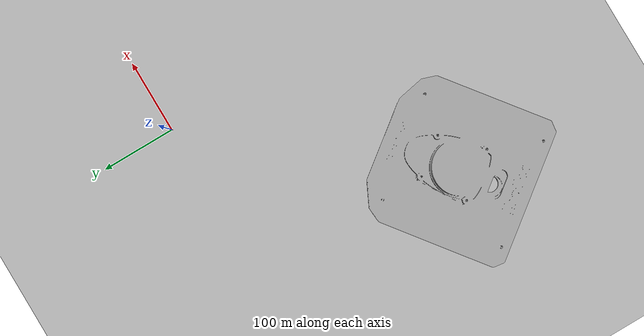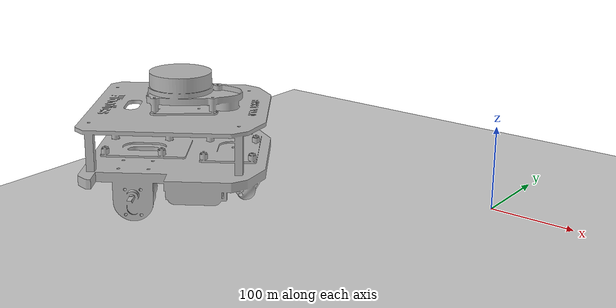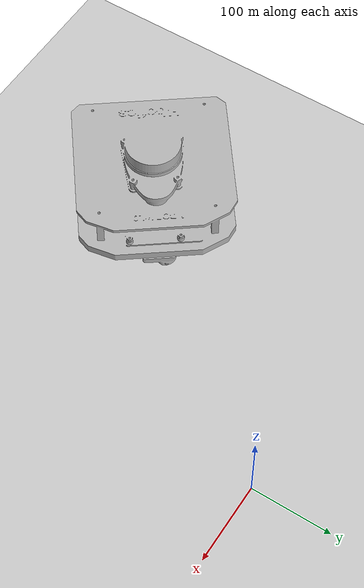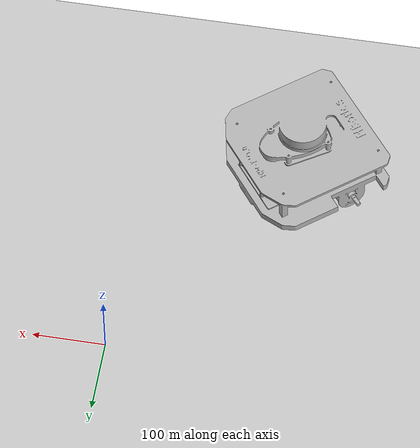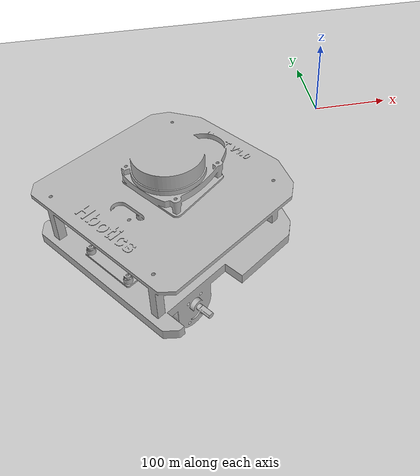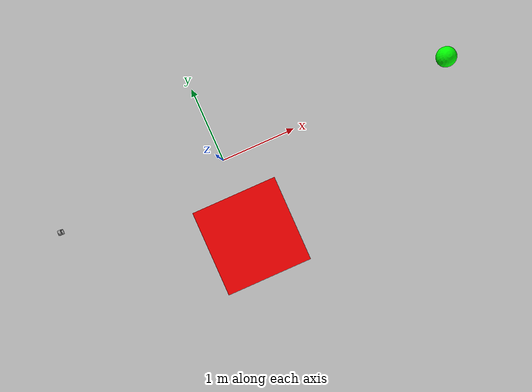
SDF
<sdf version="1.6">
 <world name="robot_world">
  <physics name="1ms" type="ignored">
   <max_step_size>0.001</max_step_size>
   <real_time_factor>1.0</real_time_factor>
  </physics>
  <plugin filename="ignition-gazebo-physics-system" name="gz::sim::systems::Physics"/>
  <plugin filename="ignition-gazebo-sensors-system" name="gz::sim::systems::Sensors">
   <render_engine>ogre</render_engine>
  </plugin>
  <plugin filename="ignition-gazebo-user-commands-system" name="gz::sim::systems::UserCommands"/>
  <plugin filename="ignition-gazebo-scene-broadcaster-system" name="gz::sim::systems::SceneBroadcaster"/>
  <scene><ambient>1.0 1.0 1.0</ambient><background>0.8 0.8 0.8</background><grid>true</grid></scene>
  <light type="directional" name="sun">
   <pose>0 0 10 0 0 0</pose>
   <diffuse>0.8 0.8 0.8 1</diffuse>
   <specular>0.8 0.8 0.8 1</specular>
   <attenuation>
    <range>1000</range>
    <constant>0.9</constant>
    <linear>0.01</linear>
    <quadratic>0.001</quadratic>
   </attenuation>
   <direction>-0.5 0.1 -0.9</direction>
  </light>
  <model name="ground_plane">
   <static>true</static>
   <link name="link">
    <collision name="collision">
     <geometry><plane><normal>0 0 1</normal><size>100 100</size></plane></geometry>
    </collision>
    <visual name="visual">
     <geometry><plane><normal>0 0 1</normal><size>100 100</size></plane></geometry>
     <material>
      <ambient>0.8 0.8 0.8 1</ambient>
      <diffuse>0.8 0.8 0.8 1</diffuse>
      <specular>0.8 0.8 0.8 1</specular>
     </material>
    </visual>
   </link>
  </model>
  <model name="box">
   <pose>0 -1 0.5 0 0 0</pose>
   <link name="box_link">
    <inertial>
     <inertia><ixx>1</ixx><ixy>0</ixy><ixz>0</ixz><iyy>1</iyy><iyz>0</iyz><izz>1</izz></inertia>
     <mass>1.0</mass>
    </inertial>
    <collision name="box_collision"><geometry><box><size>1 1 1</size></box></geometry></collision>
    <visual name="box_visual">
     <geometry><box><size>1 1 1</size></box></geometry>
     <material><ambient>1 0 0 1</ambient><diffuse>1 0 0 1</diffuse><specular>1 0 0 1</specular></material>
    </visual>
   </link>
  </model>
  <model name="sphere">
   <static>true</static>
   <pose>3 0 0.5 0 0 0</pose>
   <link name="sphere_link">
    <collision name="sphere_collision"><geometry><sphere><radius>0.125</radius></sphere></geometry></collision>
    <visual name="sphere_visual">
     <geometry><sphere><radius>0.125</radius></sphere></geometry>
     <material><ambient>0 1 0 1</ambient><diffuse>0 1 0 1</diffuse><specular>0 1 0 1</specular></material>
     <cast_shadows>false</cast_shadows>
    </visual>
   </link>
  </model>
  <include><uri>file://my_robot.sdf</uri><pose>-3 0 0 0 0 -1.5708</pose></include>
 </world>
</sdf>

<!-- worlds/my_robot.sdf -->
<sdf version="1.6">
  <model name="droneurdf2">

    <!-- Base link -->
    <link name="base_link">
      <pose>0 0 0 0 0 0</pose>
      <inertial>
        <mass>5.86053330036656</mass>
        <inertia>
          <ixx>0.095822324169567</ixx>
          <ixy>-0.000141833714427708</ixy>
          <ixz>0.0</ixz>
          <iyy>0.0942097463698701</iyy>
          <iyz>-0.00047567279662953</iyz>
          <izz>0.14804451113235</izz>
        </inertia>
      </inertial>
      <visual name="base_visual">
        <geometry>
          <mesh>
            <uri>model://models/base_link.STL</uri>
          </mesh>
        </geometry>
      </visual>
      <collision name="base_collision">
        <geometry>
          <mesh>
            <uri>model://models/base_link.STL</uri>
          </mesh>
        </geometry>
      </collision>
    </link>

    <!-- Camera link -->
    <link name="camera_link">
      <pose>0 0.7 0.02 0 0 0</pose> <!-- adjust Z to place camera above base -->
      <inertial>
        <mass>0.175587717265154</mass>
        <inertia>
          <ixx>0.000101692885115253</ixx>
          <ixy>0.0</ixy>
          <ixz>0.0</ixz>
          <iyy>0.000104799367062802</iyy>
          <iyz>0.0</iyz>
          <izz>0.000106221244379781</izz>
        </inertia>
      </inertial>
      <visual name="camera_visual">
        <geometry>
          <mesh>
            <uri>model://models/camera_link.STL</uri>
          </mesh>
        </geometry>
      </visual>
      <collision name="camera_collision">
        <geometry>
          <mesh>
            <uri>model://models/camera_link.STL</uri>
          </mesh>
        </geometry>
      </collision>

      <!-- Camera sensor directly attached to camera_link -->
      <sensor name="front_camera_sensor" type="camera">
        <pose>0 0 0 0 0 0</pose>
        <camera>
          <horizontal_fov>1.047</horizontal_fov>
          <image>
            <width>640</width>
            <height>480</height>
            <format>R8G8B8</format>
          </image>
          <clip>
            <near>0.1</near>
            <far>100</far>
          </clip>
        </camera>
        <always_on>true</always_on>
        <update_rate>30</update_rate>
        <visualize>true</visualize>
      </sensor>
    </link>

    <!-- Fixed joint to attach camera_link to base_link -->
    <joint name="camera_joint" type="fixed">
      <parent>base_link</parent>
      <child>camera_link</child>
      <pose>0 0 0 0 0 0</pose>
    </joint>

  </model>
</sdf>
